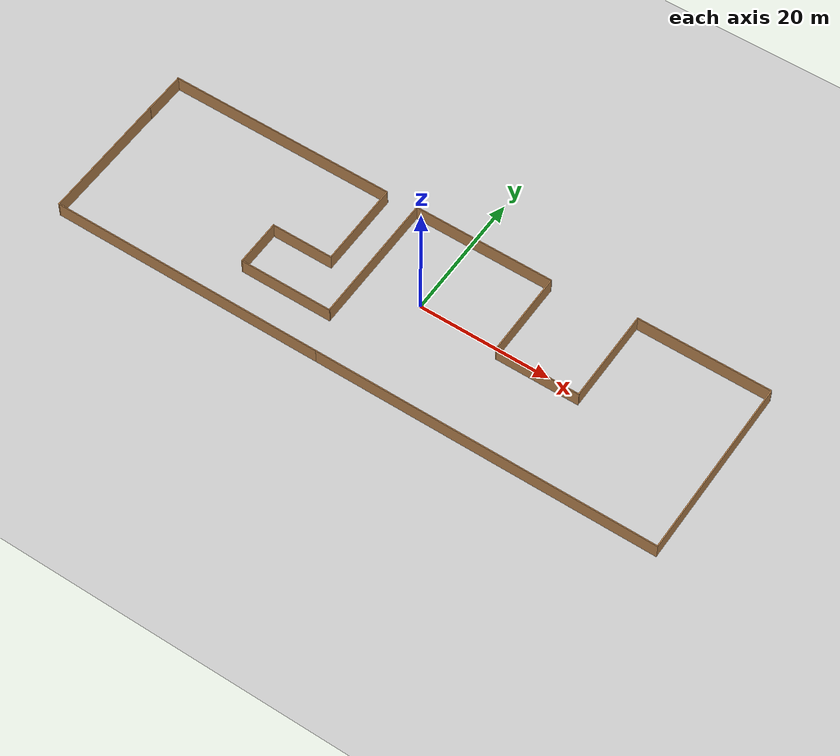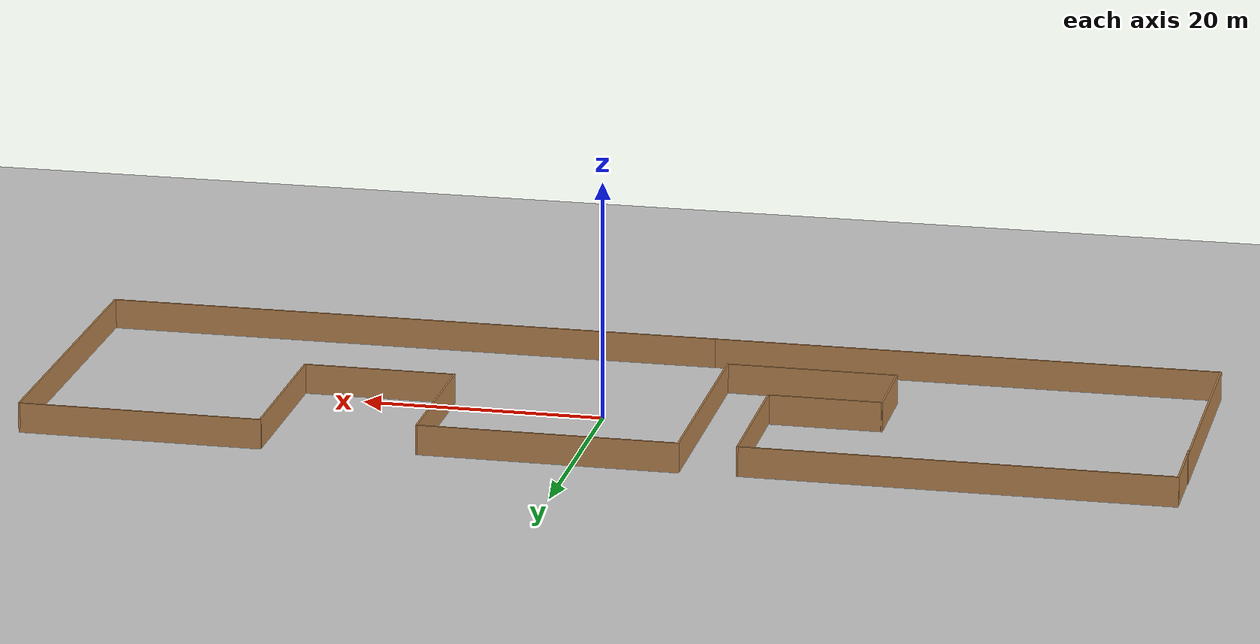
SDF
<sdf version="1.6">
 <world name="default">
  <light name="sun" type="directional">
   <pose>0 0 10 0 -0 0</pose>
   <diffuse>0.8 0.8 0.8 1</diffuse>
   <specular>0.2 0.2 0.2 1</specular>
   <attenuation>
    <range>1000</range>
    <constant>0.9</constant>
    <linear>0.01</linear>
    <quadratic>0.001</quadratic>
   </attenuation>
   <direction>-0.5 0.1 -0.9</direction>
  </light>
  <model name="ground_plane">
   <static>1</static>
   <link name="link">
    <collision name="collision">
     <geometry><plane><normal>0 0 1</normal><size>100 100</size></plane></geometry>
     <surface><friction><ode><mu>100</mu><mu2>50</mu2></ode></friction></surface>
    </collision>
    <visual name="visual">
     <cast_shadows>0</cast_shadows>
     <geometry><plane><normal>0 0 1</normal><size>100 100</size></plane></geometry>
     <material>
      <script><uri>file://media/materials/scripts/gazebo.material</uri><name>Gazebo/Grey</name></script>
     </material>
    </visual>
   </link>
  </model>
  <gravity>0 0 -9.8</gravity>
  <magnetic_field>6e-06 2.3e-05 -4.2e-05</magnetic_field>
  <atmosphere type="adiabatic"/>
  <physics name="default_physics" default="0" type="ode">
   <max_step_size>0.001</max_step_size>
   <real_time_factor>1</real_time_factor>
   <real_time_update_rate>1000</real_time_update_rate>
  </physics>
  <scene><ambient>0.4 0.4 0.4 1</ambient><background>0.7 0.7 0.7 1</background><shadows>1</shadows></scene>
  <audio><device>default</device></audio>
  <spherical_coordinates>
   <surface_model>EARTH_WGS84</surface_model>
   <latitude_deg>0</latitude_deg>
   <longitude_deg>0</longitude_deg>
   <elevation>0</elevation>
   <heading_deg>0</heading_deg>
  </spherical_coordinates>
  <model name="test1">
   <pose>-1.57472 -0.88164 0 0 -0 0</pose>
   <link name="Wall_1">
    <collision name="Wall_1_Collision">
     <geometry><box><size>21.25 0.15 2.5</size></box></geometry>
     <pose>0 0 1.25 0 -0 0</pose>
    </collision>
    <visual name="Wall_1_Visual">
     <pose>0 0 1.25 0 -0 0</pose>
     <geometry><box><size>21.25 0.15 2.5</size></box></geometry>
     <material>
      <script><uri>file://media/materials/scripts/gazebo.material</uri><name>Gazebo/Wood</name></script>
      <ambient>1 1 1 1</ambient>
     </material>
     <meta><layer>0</layer></meta>
    </visual>
    <pose>-46.975 -3.375 0 0 -0 -1.5708</pose>
   </link>
   <link name="Wall_10">
    <collision name="Wall_10_Collision">
     <geometry><box><size>20.5 0.15 2.5</size></box></geometry>
     <pose>0 0 1.25 0 -0 0</pose>
    </collision>
    <visual name="Wall_10_Visual">
     <pose>0 0 1.25 0 -0 0</pose>
     <geometry><box><size>20.5 0.15 2.5</size></box></geometry>
     <material>
      <script><uri>file://media/materials/scripts/gazebo.material</uri><name>Gazebo/Wood</name></script>
      <ambient>1 1 1 1</ambient>
     </material>
     <meta><layer>0</layer></meta>
    </visual>
    <pose>-7.075 2.5 0 0 -0 -1.5708</pose>
   </link>
   <link name="Wall_11">
    <collision name="Wall_11_Collision">
     <geometry><box><size>14.25 0.15 2.5</size></box></geometry>
     <pose>0 0 1.25 0 -0 0</pose>
    </collision>
    <visual name="Wall_11_Visual">
     <pose>0 0 1.25 0 -0 0</pose>
     <geometry><box><size>14.25 0.15 2.5</size></box></geometry>
     <material>
      <script><uri>file://media/materials/scripts/gazebo.material</uri><name>Gazebo/Wood</name></script>
      <ambient>1 1 1 1</ambient>
     </material>
     <meta><layer>0</layer></meta>
    </visual>
    <pose>-14.125 -7.675 0 0 -0 3.14159</pose>
   </link>
   <link name="Wall_12">
    <collision name="Wall_12_Collision">
     <geometry><box><size>7.25 0.15 2.5</size></box></geometry>
     <pose>0 0 1.25 0 -0 0</pose>
    </collision>
    <visual name="Wall_12_Visual">
     <pose>0 0 1.25 0 -0 0</pose>
     <geometry><box><size>7.25 0.15 2.5</size></box></geometry>
     <material>
      <script><uri>file://media/materials/scripts/gazebo.material</uri><name>Gazebo/Wood</name></script>
      <ambient>1 1 1 1</ambient>
     </material>
     <meta><layer>0</layer></meta>
    </visual>
    <pose>-21.175 -4.125 0 0 -0 1.5708</pose>
   </link>
   <link name="Wall_13">
    <collision name="Wall_13_Collision">
     <geometry><box><size>9.5 0.15 2.5</size></box></geometry>
     <pose>0 0 1.25 0 -0 0</pose>
    </collision>
    <visual name="Wall_13_Visual">
     <pose>0 0 1.25 0 -0 0</pose>
     <geometry><box><size>9.5 0.15 2.5</size></box></geometry>
     <material>
      <script><uri>file://media/materials/scripts/gazebo.material</uri><name>Gazebo/Wood</name></script>
      <ambient>1 1 1 1</ambient>
     </material>
     <meta><layer>0</layer></meta>
    </visual>
    <pose>-16.5 -0.575 0 0 -0 0</pose>
   </link>
   <link name="Wall_14">
    <collision name="Wall_14_Collision">
     <geometry><box><size>13.25 0.15 2.5</size></box></geometry>
     <pose>0 0 1.25 0 -0 0</pose>
    </collision>
    <visual name="Wall_14_Visual">
     <pose>0 0 1.25 0 -0 0</pose>
     <geometry><box><size>13.25 0.15 2.5</size></box></geometry>
     <material>
      <script><uri>file://media/materials/scripts/gazebo.material</uri><name>Gazebo/Wood</name></script>
      <ambient>1 1 1 1</ambient>
     </material>
     <meta><layer>0</layer></meta>
    </visual>
    <pose>-11.825 5.975 0 0 -0 1.5708</pose>
   </link>
   <link name="Wall_15">
    <collision name="Wall_15_Collision">
     <geometry><box><size>35.25 0.15 2.5</size></box></geometry>
     <pose>0 0 1.25 0 -0 0</pose>
    </collision>
    <visual name="Wall_15_Visual">
     <pose>0 0 1.25 0 -0 0</pose>
     <geometry><box><size>35.25 0.15 2.5</size></box></geometry>
     <material>
      <script><uri>file://media/materials/scripts/gazebo.material</uri><name>Gazebo/Wood</name></script>
      <ambient>1 1 1 1</ambient>
     </material>
     <meta><layer>0</layer></meta>
    </visual>
    <pose>-29.375 12.525 0 0 -0 3.14159</pose>
   </link>
   <link name="Wall_16">
    <collision name="Wall_16_Collision">
     <geometry><box><size>6.5 0.15 2.5</size></box></geometry>
     <pose>0 0 1.25 0 -0 0</pose>
    </collision>
    <visual name="Wall_16_Visual">
     <pose>0 0 1.25 0 -0 0</pose>
     <geometry><box><size>6.5 0.15 2.5</size></box></geometry>
     <material>
      <script><uri>file://media/materials/scripts/gazebo.material</uri><name>Gazebo/Wood</name></script>
      <ambient>1 1 1 1</ambient>
     </material>
     <meta><layer>0</layer></meta>
    </visual>
    <pose>-46.925 9.35 0 0 -0 -1.5708</pose>
   </link>
   <link name="Wall_2">
    <collision name="Wall_2_Collision">
     <geometry><box><size>42.25 0.15 2.5</size></box></geometry>
     <pose>0 0 1.25 0 -0 0</pose>
    </collision>
    <visual name="Wall_2_Visual">
     <pose>0 0 1.25 0 -0 0</pose>
     <geometry><box><size>42.25 0.15 2.5</size></box></geometry>
     <material>
      <script><uri>file://media/materials/scripts/gazebo.material</uri><name>Gazebo/Wood</name></script>
      <ambient>1 1 1 1</ambient>
     </material>
     <meta><layer>0</layer></meta>
    </visual>
    <pose>-25.925 -13.925 0 0 -0 0</pose>
   </link>
   <link name="Wall_3">
    <collision name="Wall_3_Collision">
     <geometry><box><size>52 0.15 2.5</size></box></geometry>
     <pose>0 0 1.25 0 -0 0</pose>
    </collision>
    <visual name="Wall_3_Visual">
     <pose>0 0 1.25 0 -0 0</pose>
     <geometry><box><size>52 0.15 2.5</size></box></geometry>
     <material>
      <script><uri>file://media/materials/scripts/gazebo.material</uri><name>Gazebo/Wood</name></script>
      <ambient>1 1 1 1</ambient>
     </material>
     <meta><layer>0</layer></meta>
    </visual>
    <pose>21.05 -13.925 0 0 -0 0</pose>
   </link>
   <link name="Wall_4">
    <collision name="Wall_4_Collision">
     <geometry><box><size>28 0.15 2.5</size></box></geometry>
     <pose>0 0 1.25 0 -0 0</pose>
    </collision>
    <visual name="Wall_4_Visual">
     <pose>0 0 1.25 0 -0 0</pose>
     <geometry><box><size>28 0.15 2.5</size></box></geometry>
     <material>
      <script><uri>file://media/materials/scripts/gazebo.material</uri><name>Gazebo/Wood</name></script>
      <ambient>1 1 1 1</ambient>
     </material>
     <meta><layer>0</layer></meta>
    </visual>
    <pose>46.975 -0 0 0 -0 1.5708</pose>
   </link>
   <link name="Wall_5">
    <collision name="Wall_5_Collision">
     <geometry><box><size>20.25 0.15 2.5</size></box></geometry>
     <pose>0 0 1.25 0 -0 0</pose>
    </collision>
    <visual name="Wall_5_Visual">
     <pose>0 0 1.25 0 -0 0</pose>
     <geometry><box><size>20.25 0.15 2.5</size></box></geometry>
     <material>
      <script><uri>file://media/materials/scripts/gazebo.material</uri><name>Gazebo/Wood</name></script>
      <ambient>1 1 1 1</ambient>
     </material>
     <meta><layer>0</layer></meta>
    </visual>
    <pose>36.925 13.925 0 0 -0 3.14159</pose>
   </link>
   <link name="Wall_6">
    <collision name="Wall_6_Collision">
     <geometry><box><size>14.5 0.15 2.5</size></box></geometry>
     <pose>0 0 1.25 0 -0 0</pose>
    </collision>
    <visual name="Wall_6_Visual">
     <pose>0 0 1.25 0 -0 0</pose>
     <geometry><box><size>14.5 0.15 2.5</size></box></geometry>
     <material>
      <script><uri>file://media/materials/scripts/gazebo.material</uri><name>Gazebo/Wood</name></script>
      <ambient>1 1 1 1</ambient>
     </material>
     <meta><layer>0</layer></meta>
    </visual>
    <pose>26.875 6.75 0 0 -0 -1.5708</pose>
   </link>
   <link name="Wall_7">
    <collision name="Wall_7_Collision">
     <geometry><box><size>12.75 0.15 2.5</size></box></geometry>
     <pose>0 0 1.25 0 -0 0</pose>
    </collision>
    <visual name="Wall_7_Visual">
     <pose>0 0 1.25 0 -0 0</pose>
     <geometry><box><size>12.75 0.15 2.5</size></box></geometry>
     <material>
      <script><uri>file://media/materials/scripts/gazebo.material</uri><name>Gazebo/Wood</name></script>
      <ambient>1 1 1 1</ambient>
     </material>
     <meta><layer>0</layer></meta>
    </visual>
    <pose>20.575 -0.425 0 0 -0 3.14159</pose>
   </link>
   <link name="Wall_8">
    <collision name="Wall_8_Collision">
     <geometry><box><size>13.25 0.15 2.5</size></box></geometry>
     <pose>0 0 1.25 0 -0 0</pose>
    </collision>
    <visual name="Wall_8_Visual">
     <pose>0 0 1.25 0 -0 0</pose>
     <geometry><box><size>13.25 0.15 2.5</size></box></geometry>
     <material>
      <script><uri>file://media/materials/scripts/gazebo.material</uri><name>Gazebo/Wood</name></script>
      <ambient>1 1 1 1</ambient>
     </material>
     <meta><layer>0</layer></meta>
    </visual>
    <pose>14.275 6.125 0 0 -0 1.5708</pose>
   </link>
   <link name="Wall_9">
    <collision name="Wall_9_Collision">
     <geometry><box><size>21.5 0.15 2.5</size></box></geometry>
     <pose>0 0 1.25 0 -0 0</pose>
    </collision>
    <visual name="Wall_9_Visual">
     <pose>0 0 1.25 0 -0 0</pose>
     <geometry><box><size>21.5 0.15 2.5</size></box></geometry>
     <material>
      <script><uri>file://media/materials/scripts/gazebo.material</uri><name>Gazebo/Wood</name></script>
      <ambient>1 1 1 1</ambient>
     </material>
     <meta><layer>0</layer></meta>
    </visual>
    <pose>3.6 12.675 0 0 -0 3.14159</pose>
   </link>
   <static>1</static>
  </model>
 </world>
</sdf>
